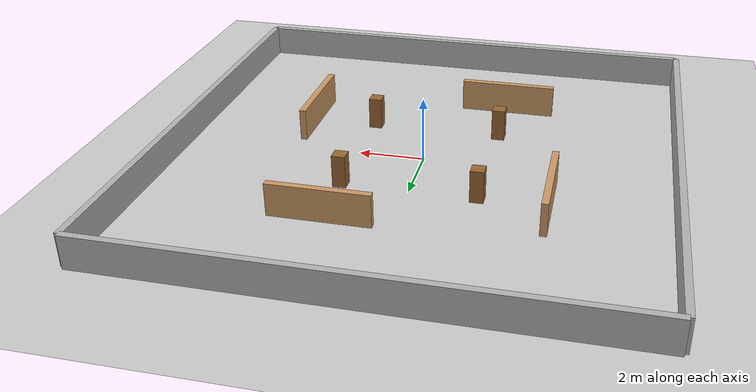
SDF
<?xml version="1.0"?>
<sdf version="1.6">
  <world name="my_house_small">

    <!-- Physics -->
    <physics type="ode">
      <real_time_update_rate>1000.0</real_time_update_rate>
      <max_step_size>0.001</max_step_size>
      <real_time_factor>1</real_time_factor>
    </physics>

    <!-- Light -->
    <include>
      <uri>model://sun</uri>
    </include>

    <!-- Ground Plane -->
    <include>
      <uri>model://ground_plane</uri>
    </include>

    <!-- ==========================
         Construction Site - 15m x 15m
         100% COMPLETE VERSION
       ========================== -->

    <!-- ========== 4 OUTER WALLS (15m x 15m perimeter) ========== -->

    <!-- North wall -->
    <model name="wall_north">
      <static>true</static>
      <pose>0 7.5 0.5 0 0 0</pose>
      <link name="link">
        <collision name="collision">
          <geometry><box><size>15 0.2 1</size></box></geometry>
        </collision>
        <visual name="visual">
          <geometry><box><size>15 0.2 1</size></box></geometry>
          <material>
            <ambient>0.7 0.7 0.7 1</ambient>
            <diffuse>0.7 0.7 0.7 1</diffuse>
          </material>
        </visual>
      </link>
    </model>

    <!-- South wall -->
    <model name="wall_south">
      <static>true</static>
      <pose>0 -7.5 0.5 0 0 0</pose>
      <link name="link">
        <collision name="collision">
          <geometry><box><size>15 0.2 1</size></box></geometry>
        </collision>
        <visual name="visual">
          <geometry><box><size>15 0.2 1</size></box></geometry>
          <material>
            <ambient>0.7 0.7 0.7 1</ambient>
            <diffuse>0.7 0.7 0.7 1</diffuse>
          </material>
        </visual>
      </link>
    </model>

    <!-- East wall -->
    <model name="wall_east">
      <static>true</static>
      <pose>7.5 0 0.5 0 0 0</pose>
      <link name="link">
        <collision name="collision">
          <geometry><box><size>0.2 15 1</size></box></geometry>
        </collision>
        <visual name="visual">
          <geometry><box><size>0.2 15 1</size></box></geometry>
          <material>
            <ambient>0.7 0.7 0.7 1</ambient>
            <diffuse>0.7 0.7 0.7 1</diffuse>
          </material>
        </visual>
      </link>
    </model>

    <!-- West wall -->
    <model name="wall_west">
      <static>true</static>
      <pose>-7.5 0 0.5 0 0 0</pose>
      <link name="link">
        <collision name="collision">
          <geometry><box><size>0.2 15 1</size></box></geometry>
        </collision>
        <visual name="visual">
          <geometry><box><size>0.2 15 1</size></box></geometry>
          <material>
            <ambient>0.7 0.7 0.7 1</ambient>
            <diffuse>0.7 0.7 0.7 1</diffuse>
          </material>
        </visual>
      </link>
    </model>

    <!-- ========== 4 INNER WALLS (standalone, NOT connected) ========== -->

    <!-- Inner wall 1 - vertical, left side -->
    <model name="inner_wall_1">
      <static>true</static>
      <pose>-4 2 0.5 0 0 0</pose>
      <link name="link">
        <collision name="collision">
          <geometry><box><size>0.2 3 1</size></box></geometry>
        </collision>
        <visual name="visual">
          <geometry><box><size>0.2 3 1</size></box></geometry>
          <material>
            <ambient>0.8 0.6 0.4 1</ambient>
            <diffuse>0.8 0.6 0.4 1</diffuse>
          </material>
        </visual>
      </link>
    </model>

    <!-- Inner wall 2 - horizontal, top area -->
    <model name="inner_wall_2">
      <static>true</static>
      <pose>2 4 0.5 0 0 0</pose>
      <link name="link">
        <collision name="collision">
          <geometry><box><size>3 0.2 1</size></box></geometry>
        </collision>
        <visual name="visual">
          <geometry><box><size>3 0.2 1</size></box></geometry>
          <material>
            <ambient>0.8 0.6 0.4 1</ambient>
            <diffuse>0.8 0.6 0.4 1</diffuse>
          </material>
        </visual>
      </link>
    </model>

    <!-- Inner wall 3 - vertical, right side -->
    <model name="inner_wall_3">
      <static>true</static>
      <pose>4 -2 0.5 0 0 0</pose>
      <link name="link">
        <collision name="collision">
          <geometry><box><size>0.2 3 1</size></box></geometry>
        </collision>
        <visual name="visual">
          <geometry><box><size>0.2 3 1</size></box></geometry>
          <material>
            <ambient>0.8 0.6 0.4 1</ambient>
            <diffuse>0.8 0.6 0.4 1</diffuse>
          </material>
        </visual>
      </link>
    </model>

    <!-- Inner wall 4 - horizontal, bottom area -->
    <model name="inner_wall_4">
      <static>true</static>
      <pose>-2 -4 0.5 0 0 0</pose>
      <link name="link">
        <collision name="collision">
          <geometry><box><size>3 0.2 1</size></box></geometry>
        </collision>
        <visual name="visual">
          <geometry><box><size>3 0.2 1</size></box></geometry>
          <material>
            <ambient>0.8 0.6 0.4 1</ambient>
            <diffuse>0.8 0.6 0.4 1</diffuse>
          </material>
        </visual>
      </link>
    </model>

    <!-- ========== 4 PILLARS (standalone, NOT connected to walls) ========== -->

    <!-- Pillar 1 - top left area -->
    <model name="pillar_1">
      <static>true</static>
      <pose>-2 2 0.5 0 0 0</pose>
      <link name="link">
        <collision name="collision">
          <geometry><box><size>0.4 0.4 1</size></box></geometry>
        </collision>
        <visual name="visual">
          <geometry><box><size>0.4 0.4 1</size></box></geometry>
          <material>
            <ambient>0.6 0.4 0.2 1</ambient>
            <diffuse>0.6 0.4 0.2 1</diffuse>
          </material>
        </visual>
      </link>
    </model>

    <!-- Pillar 2 - top right area -->
    <model name="pillar_2">
      <static>true</static>
      <pose>2 2 0.5 0 0 0</pose>
      <link name="link">
        <collision name="collision">
          <geometry><box><size>0.4 0.4 1</size></box></geometry>
        </collision>
        <visual name="visual">
          <geometry><box><size>0.4 0.4 1</size></box></geometry>
          <material>
            <ambient>0.6 0.4 0.2 1</ambient>
            <diffuse>0.6 0.4 0.2 1</diffuse>
          </material>
        </visual>
      </link>
    </model>

    <!-- Pillar 3 - bottom left area -->
    <model name="pillar_3">
      <static>true</static>
      <pose>-2 -2 0.5 0 0 0</pose>
      <link name="link">
        <collision name="collision">
          <geometry><box><size>0.4 0.4 1</size></box></geometry>
        </collision>
        <visual name="visual">
          <geometry><box><size>0.4 0.4 1</size></box></geometry>
          <material>
            <ambient>0.6 0.4 0.2 1</ambient>
            <diffuse>0.6 0.4 0.2 1</diffuse>
          </material>
        </visual>
      </link>
    </model>

    <!-- Pillar 4 - bottom right area -->
    <model name="pillar_4">
      <static>true</static>
      <pose>2 -2 0.5 0 0 0</pose>
      <link name="link">
        <collision name="collision">
          <geometry><box><size>0.4 0.4 1</size></box></geometry>
        </collision>
        <visual name="visual">
          <geometry><box><size>0.4 0.4 1</size></box></geometry>
          <material>
            <ambient>0.6 0.4 0.2 1</ambient>
            <diffuse>0.6 0.4 0.2 1</diffuse>
          </material>
        </visual>
      </link>
    </model>

  </world>
</sdf>
